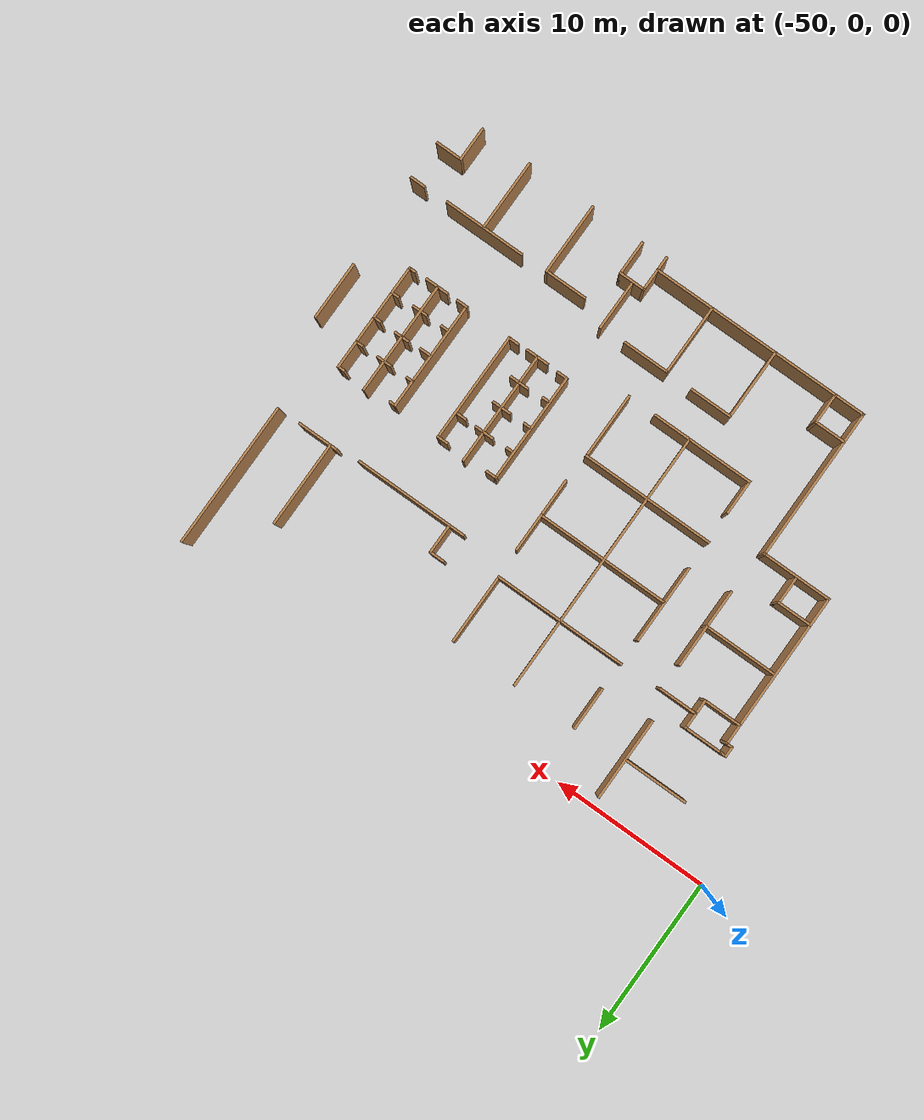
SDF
<sdf version="1.6">
 <model name="floor_plan">
  <pose>-1.19231 -1.13475 0 0 -0 0</pose>
  <link name="Wall_22">
   <collision name="Wall_22_Collision">
    <geometry><box><size>1 0.15 2.5</size></box></geometry>
    <pose>0 0 1.25 0 -0 0</pose>
   </collision>
   <visual name="Wall_22_Visual">
    <pose>0 0 1.25 0 -0 0</pose>
    <geometry><box><size>1 0.15 2.5</size></box></geometry>
    <material>
     <script><uri>file://media/materials/scripts/gazebo.material</uri><name>Gazebo/Wood</name></script>
     <ambient>1 1 1 1</ambient>
    </material>
   </visual>
   <pose>-26.55 -26.0536 0 0 -0 1.5708</pose>
  </link>
  <link name="Wall_23">
   <collision name="Wall_23_Collision">
    <geometry><box><size>14.25 0.15 2.5</size></box></geometry>
    <pose>0 0 1.25 0 -0 0</pose>
   </collision>
   <visual name="Wall_23_Visual">
    <pose>0 0 1.25 0 -0 0</pose>
    <geometry><box><size>14.25 0.15 2.5</size></box></geometry>
    <material>
     <script><uri>file://media/materials/scripts/gazebo.material</uri><name>Gazebo/Wood</name></script>
     <ambient>1 1 1 1</ambient>
    </material>
   </visual>
   <pose>-33.6 -25.6286 0 0 -0 3.14159</pose>
  </link>
  <link name="Wall_24">
   <collision name="Wall_24_Collision">
    <geometry><box><size>9.75 0.15 2.5</size></box></geometry>
    <pose>0 0 1.25 0 -0 0</pose>
   </collision>
   <visual name="Wall_24_Visual">
    <pose>0 0 1.25 0 -0 0</pose>
    <geometry><box><size>9.75 0.15 2.5</size></box></geometry>
    <material>
     <script><uri>file://media/materials/scripts/gazebo.material</uri><name>Gazebo/Wood</name></script>
     <ambient>1 1 1 1</ambient>
    </material>
   </visual>
   <pose>-40.65 -20.8286 0 0 -0 1.5708</pose>
  </link>
  <link name="Wall_25">
   <collision name="Wall_25_Collision">
    <geometry><box><size>4.5 0.15 2.5</size></box></geometry>
    <pose>0 0 1.25 0 -0 0</pose>
   </collision>
   <visual name="Wall_25_Visual">
    <pose>0 0 1.25 0 -0 0</pose>
    <geometry><box><size>4.5 0.15 2.5</size></box></geometry>
    <material>
     <script><uri>file://media/materials/scripts/gazebo.material</uri><name>Gazebo/Wood</name></script>
     <ambient>1 1 1 1</ambient>
    </material>
   </visual>
   <pose>-42.825 -16.0286 0 0 -0 3.14159</pose>
  </link>
  <link name="Wall_26">
   <collision name="Wall_26_Collision">
    <geometry><box><size>10 0.15 2.5</size></box></geometry>
    <pose>0 0 1.25 0 -0 0</pose>
   </collision>
   <visual name="Wall_26_Visual">
    <pose>0 0 1.25 0 -0 0</pose>
    <geometry><box><size>10 0.15 2.5</size></box></geometry>
    <material>
     <script><uri>file://media/materials/scripts/gazebo.material</uri><name>Gazebo/Wood</name></script>
     <ambient>1 1 1 1</ambient>
    </material>
   </visual>
   <pose>-45 -11.1036 0 0 -0 1.5708</pose>
  </link>
  <link name="Wall_27">
   <collision name="Wall_27_Collision">
    <geometry><box><size>0.5 0.15 2.5</size></box></geometry>
    <pose>0 0 1.25 0 -0 0</pose>
   </collision>
   <visual name="Wall_27_Visual">
    <pose>0 0 1.25 0 -0 0</pose>
    <geometry><box><size>0.5 0.15 2.5</size></box></geometry>
    <material>
     <script><uri>file://media/materials/scripts/gazebo.material</uri><name>Gazebo/Wood</name></script>
     <ambient>1 1 1 1</ambient>
    </material>
   </visual>
   <pose>-45.175 -6.1786 0 0 -0 3.14159</pose>
  </link>
  <link name="Wall_321">
   <collision name="Wall_321_Collision">
    <geometry><box><size>1.75 0.15 2.5</size></box></geometry>
    <pose>0 0 1.25 0 -0 0</pose>
   </collision>
   <visual name="Wall_321_Visual">
    <pose>0 0 1.25 0 -0 0</pose>
    <geometry><box><size>1.75 0.15 2.5</size></box></geometry>
    <material>
     <script><uri>file://media/materials/scripts/gazebo.material</uri><name>Gazebo/Wood</name></script>
     <ambient>1 1 1 1</ambient>
    </material>
   </visual>
   <pose>-13.0655 -24.3426 0 0 -0 3.14159</pose>
  </link>
  <link name="Wall_322">
   <collision name="Wall_322_Collision">
    <geometry><box><size>2.25 0.15 2.5</size></box></geometry>
    <pose>0 0 1.25 0 -0 0</pose>
   </collision>
   <visual name="Wall_322_Visual">
    <pose>0 0 1.25 0 -0 0</pose>
    <geometry><box><size>2.25 0.15 2.5</size></box></geometry>
    <material>
     <script><uri>file://media/materials/scripts/gazebo.material</uri><name>Gazebo/Wood</name></script>
     <ambient>1 1 1 1</ambient>
    </material>
   </visual>
   <pose>-13.8655 -25.3926 0 0 0 -1.5708</pose>
  </link>
  <link name="Wall_324">
   <collision name="Wall_324_Collision">
    <geometry><box><size>1 0.15 2.5</size></box></geometry>
    <pose>0 0 1.25 0 -0 0</pose>
   </collision>
   <visual name="Wall_324_Visual">
    <pose>0 0 1.25 0 -0 0</pose>
    <geometry><box><size>1 0.15 2.5</size></box></geometry>
    <material>
     <script><uri>file://media/materials/scripts/gazebo.material</uri><name>Gazebo/Wood</name></script>
     <ambient>1 1 1 1</ambient>
    </material>
   </visual>
   <pose>-12.6354 -21.8825 0 0 -0 3.14159</pose>
  </link>
  <link name="Wall_326">
   <collision name="Wall_326_Collision">
    <geometry><box><size>5.25 0.15 2.5</size></box></geometry>
    <pose>0 0 1.25 0 -0 0</pose>
   </collision>
   <visual name="Wall_326_Visual">
    <pose>0 0 1.25 0 -0 0</pose>
    <geometry><box><size>5.25 0.15 2.5</size></box></geometry>
    <material>
     <script><uri>file://media/materials/scripts/gazebo.material</uri><name>Gazebo/Wood</name></script>
     <ambient>1 1 1 1</ambient>
    </material>
   </visual>
   <pose>-17.2389 -21.9193 0 0 -0 3.14159</pose>
  </link>
  <link name="Wall_330">
   <collision name="Wall_330_Collision">
    <geometry><box><size>4.5 0.15 2.5</size></box></geometry>
    <pose>0 0 1.25 0 -0 0</pose>
   </collision>
   <visual name="Wall_330_Visual">
    <pose>0 0 1.25 0 -0 0</pose>
    <geometry><box><size>4.5 0.15 2.5</size></box></geometry>
    <material>
     <script><uri>file://media/materials/scripts/gazebo.material</uri><name>Gazebo/Wood</name></script>
     <ambient>1 1 1 1</ambient>
    </material>
   </visual>
   <pose>-17.1673 -24.191 0 0 0 -1.5708</pose>
  </link>
  <link name="Wall_334">
   <collision name="Wall_334_Collision">
    <geometry><box><size>4.6 0.15 2.5</size></box></geometry>
    <pose>0 0 1.25 0 -0 0</pose>
   </collision>
   <visual name="Wall_334_Visual">
    <pose>0 0 1.25 0 -0 0</pose>
    <geometry><box><size>4.6 0.15 2.5</size></box></geometry>
    <material>
     <script><uri>file://media/materials/scripts/gazebo.material</uri><name>Gazebo/Wood</name></script>
     <ambient>1 1 1 1</ambient>
    </material>
   </visual>
   <pose>-21.4986 -24.1906 0 0 -0 1.5708</pose>
  </link>
  <link name="Wall_336">
   <collision name="Wall_336_Collision">
    <geometry><box><size>2.75 0.15 2.5</size></box></geometry>
    <pose>0 0 1.25 0 -0 0</pose>
   </collision>
   <visual name="Wall_336_Visual">
    <pose>0 0 1.25 0 -0 0</pose>
    <geometry><box><size>2.75 0.15 2.5</size></box></geometry>
    <material>
     <script><uri>file://media/materials/scripts/gazebo.material</uri><name>Gazebo/Wood</name></script>
     <ambient>1 1 1 1</ambient>
    </material>
   </visual>
   <pose>-22.7986 -21.9656 0 0 -0 3.14159</pose>
  </link>
  <link name="Wall_338">
   <collision name="Wall_338_Collision">
    <geometry><box><size>1.5 0.15 2.5</size></box></geometry>
    <pose>0 0 1.25 0 -0 0</pose>
   </collision>
   <visual name="Wall_338_Visual">
    <pose>0 0 1.25 0 -0 0</pose>
    <geometry><box><size>1.5 0.15 2.5</size></box></geometry>
    <material>
     <script><uri>file://media/materials/scripts/gazebo.material</uri><name>Gazebo/Wood</name></script>
     <ambient>1 1 1 1</ambient>
    </material>
   </visual>
   <pose>-26.55 -24.9536 0 0 -0 1.5708</pose>
  </link>
  <link name="Wall_339">
   <collision name="Wall_339_Collision">
    <geometry><box><size>1.75 0.15 2.5</size></box></geometry>
    <pose>0 0 1.25 0 -0 0</pose>
   </collision>
   <visual name="Wall_339_Visual">
    <pose>0 0 1.25 0 -0 0</pose>
    <geometry><box><size>1.75 0.15 2.5</size></box></geometry>
    <material>
     <script><uri>file://media/materials/scripts/gazebo.material</uri><name>Gazebo/Wood</name></script>
     <ambient>1 1 1 1</ambient>
    </material>
   </visual>
   <pose>-25.75 -24.2786 0 0 -0 0</pose>
  </link>
  <link name="Wall_340">
   <collision name="Wall_340_Collision">
    <geometry><box><size>2.25 0.15 2.5</size></box></geometry>
    <pose>0 0 1.25 0 -0 0</pose>
   </collision>
   <visual name="Wall_340_Visual">
    <pose>0 0 1.25 0 -0 0</pose>
    <geometry><box><size>2.25 0.15 2.5</size></box></geometry>
    <material>
     <script><uri>file://media/materials/scripts/gazebo.material</uri><name>Gazebo/Wood</name></script>
     <ambient>1 1 1 1</ambient>
    </material>
   </visual>
   <pose>-24.95 -25.3286 0 0 0 -1.5708</pose>
  </link>
  <link name="Wall_342">
   <collision name="Wall_342_Collision">
    <geometry><box><size>3.25 0.15 2.5</size></box></geometry>
    <pose>0 0 1.25 0 -0 0</pose>
   </collision>
   <visual name="Wall_342_Visual">
    <pose>0 0 1.25 0 -0 0</pose>
    <geometry><box><size>3.25 0.15 2.5</size></box></geometry>
    <material>
     <script><uri>file://media/materials/scripts/gazebo.material</uri><name>Gazebo/Wood</name></script>
     <ambient>1 1 1 1</ambient>
    </material>
   </visual>
   <pose>-25.8158 -22.6722 0 0 -0 1.5708</pose>
  </link>
  <link name="Wall_345">
   <collision name="Wall_345_Collision">
    <geometry><box><size>4.5 0.15 2.5</size></box></geometry>
    <pose>0 0 1.25 0 -0 0</pose>
   </collision>
   <visual name="Wall_345_Visual">
    <pose>0 0 1.25 0 -0 0</pose>
    <geometry><box><size>4.5 0.15 2.5</size></box></geometry>
    <material>
     <script><uri>file://media/materials/scripts/gazebo.material</uri><name>Gazebo/Wood</name></script>
     <ambient>1 1 1 1</ambient>
    </material>
   </visual>
   <pose>-30.2996 -23.3938 0 0 -0 1.5708</pose>
  </link>
  <link name="Wall_346">
   <collision name="Wall_346_Collision">
    <geometry><box><size>3 0.15 2.5</size></box></geometry>
    <pose>0 0 1.25 0 -0 0</pose>
   </collision>
   <visual name="Wall_346_Visual">
    <pose>0 0 1.25 0 -0 0</pose>
    <geometry><box><size>3 0.15 2.5</size></box></geometry>
    <material>
     <script><uri>file://media/materials/scripts/gazebo.material</uri><name>Gazebo/Wood</name></script>
     <ambient>1 1 1 1</ambient>
    </material>
   </visual>
   <pose>-28.8746 -21.2188 0 0 -0 0</pose>
  </link>
  <link name="Wall_348">
   <collision name="Wall_348_Collision">
    <geometry><box><size>4.5 0.15 2.5</size></box></geometry>
    <pose>0 0 1.25 0 -0 0</pose>
   </collision>
   <visual name="Wall_348_Visual">
    <pose>0 0 1.25 0 -0 0</pose>
    <geometry><box><size>4.5 0.15 2.5</size></box></geometry>
    <material>
     <script><uri>file://media/materials/scripts/gazebo.material</uri><name>Gazebo/Wood</name></script>
     <ambient>1 1 1 1</ambient>
    </material>
   </visual>
   <pose>-34.6308 -23.3938 0 0 -0 1.5708</pose>
  </link>
  <link name="Wall_349">
   <collision name="Wall_349_Collision">
    <geometry><box><size>2.75 0.15 2.5</size></box></geometry>
    <pose>0 0 1.25 0 -0 0</pose>
   </collision>
   <visual name="Wall_349_Visual">
    <pose>0 0 1.25 0 -0 0</pose>
    <geometry><box><size>2.75 0.15 2.5</size></box></geometry>
    <material>
     <script><uri>file://media/materials/scripts/gazebo.material</uri><name>Gazebo/Wood</name></script>
     <ambient>1 1 1 1</ambient>
    </material>
   </visual>
   <pose>-33.3308 -21.2188 0 0 -0 0</pose>
  </link>
  <link name="Wall_351">
   <collision name="Wall_351_Collision">
    <geometry><box><size>2 0.15 2.5</size></box></geometry>
    <pose>0 0 1.25 0 -0 0</pose>
   </collision>
   <visual name="Wall_351_Visual">
    <pose>0 0 1.25 0 -0 0</pose>
    <geometry><box><size>2 0.15 2.5</size></box></geometry>
    <material>
     <script><uri>file://media/materials/scripts/gazebo.material</uri><name>Gazebo/Wood</name></script>
     <ambient>1 1 1 1</ambient>
    </material>
   </visual>
   <pose>-38.7398 -24.6715 0 0 -0 1.5708</pose>
  </link>
  <link name="Wall_352">
   <collision name="Wall_352_Collision">
    <geometry><box><size>2 0.15 2.5</size></box></geometry>
    <pose>0 0 1.25 0 -0 0</pose>
   </collision>
   <visual name="Wall_352_Visual">
    <pose>0 0 1.25 0 -0 0</pose>
    <geometry><box><size>2 0.15 2.5</size></box></geometry>
    <material>
     <script><uri>file://media/materials/scripts/gazebo.material</uri><name>Gazebo/Wood</name></script>
     <ambient>1 1 1 1</ambient>
    </material>
   </visual>
   <pose>-39.6648 -23.7465 0 0 -0 3.14159</pose>
  </link>
  <link name="Wall_512">
   <collision name="Wall_512_Collision">
    <geometry><box><size>3.75 0.15 2.5</size></box></geometry>
    <pose>0 0 1.25 0 -0 0</pose>
   </collision>
   <visual name="Wall_512_Visual">
    <pose>0 0 1.25 0 -0 0</pose>
    <geometry><box><size>3.75 0.15 2.5</size></box></geometry>
    <material>
     <script><uri>file://media/materials/scripts/gazebo.material</uri><name>Gazebo/Wood</name></script>
     <ambient>1 1 1 1</ambient>
    </material>
   </visual>
   <pose>-12.449 -14.135 0 0 0 -1.5708</pose>
  </link>
  <link name="Wall_564">
   <collision name="Wall_564_Collision">
    <geometry><box><size>9.25 0.15 2.5</size></box></geometry>
    <pose>0 0 1.25 0 -0 0</pose>
   </collision>
   <visual name="Wall_564_Visual">
    <pose>0 0 1.25 0 -0 0</pose>
    <geometry><box><size>9.25 0.15 2.5</size></box></geometry>
    <material>
     <script><uri>file://media/materials/scripts/gazebo.material</uri><name>Gazebo/Wood</name></script>
     <ambient>1 1 1 1</ambient>
    </material>
   </visual>
   <pose>-13.76 -2.31803 0 0 0 -1.5708</pose>
  </link>
  <link name="Wall_593">
   <collision name="Wall_593_Collision">
    <geometry><box><size>7.25 0.15 2.5</size></box></geometry>
    <pose>0 0 1.25 0 -0 0</pose>
   </collision>
   <visual name="Wall_593_Visual">
    <pose>0 0 1.25 0 -0 0</pose>
    <geometry><box><size>7.25 0.15 2.5</size></box></geometry>
    <material>
     <script><uri>file://media/materials/scripts/gazebo.material</uri><name>Gazebo/Wood</name></script>
     <ambient>1 1 1 1</ambient>
    </material>
   </visual>
   <pose>-22.7839 -7.13156 0 0 -0 0</pose>
  </link>
  <link name="Wall_600">
   <collision name="Wall_600_Collision">
    <geometry><box><size>5.5 0.15 2.5</size></box></geometry>
    <pose>0 0 1.25 0 -0 0</pose>
   </collision>
   <visual name="Wall_600_Visual">
    <pose>0 0 1.25 0 -0 0</pose>
    <geometry><box><size>5.5 0.15 2.5</size></box></geometry>
    <material>
     <script><uri>file://media/materials/scripts/gazebo.material</uri><name>Gazebo/Wood</name></script>
     <ambient>1 1 1 1</ambient>
    </material>
   </visual>
   <pose>-17.3601 -4.24303 0 0 0 -1.5708</pose>
  </link>
  <link name="Wall_601">
   <collision name="Wall_601_Collision">
    <geometry><box><size>2.25 0.15 2.5</size></box></geometry>
    <pose>0 0 1.25 0 -0 0</pose>
   </collision>
   <visual name="Wall_601_Visual">
    <pose>0 0 1.25 0 -0 0</pose>
    <geometry><box><size>2.25 0.15 2.5</size></box></geometry>
    <material>
     <script><uri>file://media/materials/scripts/gazebo.material</uri><name>Gazebo/Wood</name></script>
     <ambient>1 1 1 1</ambient>
    </material>
   </visual>
   <pose>-16.31 -6.91803 0 0 -0 0</pose>
  </link>
  <link name="Wall_603">
   <collision name="Wall_603_Collision">
    <geometry><box><size>0.5 0.15 2.5</size></box></geometry>
    <pose>0 0 1.25 0 -0 0</pose>
   </collision>
   <visual name="Wall_603_Visual">
    <pose>0 0 1.25 0 -0 0</pose>
    <geometry><box><size>0.5 0.15 2.5</size></box></geometry>
    <material>
     <script><uri>file://media/materials/scripts/gazebo.material</uri><name>Gazebo/Wood</name></script>
     <ambient>1 1 1 1</ambient>
    </material>
   </visual>
   <pose>-17.535 -6.91803 0 0 -0 3.14159</pose>
  </link>
  <link name="Wall_605">
   <collision name="Wall_605_Collision">
    <geometry><box><size>1 0.15 2.5</size></box></geometry>
    <pose>0 0 1.25 0 -0 0</pose>
   </collision>
   <visual name="Wall_605_Visual">
    <pose>0 0 1.25 0 -0 0</pose>
    <geometry><box><size>1 0.15 2.5</size></box></geometry>
    <material>
     <script><uri>file://media/materials/scripts/gazebo.material</uri><name>Gazebo/Wood</name></script>
     <ambient>1 1 1 1</ambient>
    </material>
   </visual>
   <pose>-25.8341 -5.29829 0 0 -0 0</pose>
  </link>
  <link name="Wall_606">
   <collision name="Wall_606_Collision">
    <geometry><box><size>1.9 0.15 2.5</size></box></geometry>
    <pose>0 0 1.25 0 -0 0</pose>
   </collision>
   <visual name="Wall_606_Visual">
    <pose>0 0 1.25 0 -0 0</pose>
    <geometry><box><size>1.9 0.15 2.5</size></box></geometry>
    <material>
     <script><uri>file://media/materials/scripts/gazebo.material</uri><name>Gazebo/Wood</name></script>
     <ambient>1 1 1 1</ambient>
    </material>
   </visual>
   <pose>-25.4091 -6.17329 0 0 0 -1.5708</pose>
  </link>
  <link name="Wall_691">
   <collision name="Wall_691_Collision">
    <geometry><box><size>0.75 0.15 2.5</size></box></geometry>
    <pose>0 0 1.25 0 -0 0</pose>
   </collision>
   <visual name="Wall_691_Visual">
    <pose>0 0 1.25 0 -0 0</pose>
    <geometry><box><size>0.75 0.15 2.5</size></box></geometry>
    <material>
     <script><uri>file://media/materials/scripts/gazebo.material</uri><name>Gazebo/Wood</name></script>
     <ambient>1 1 1 1</ambient>
    </material>
   </visual>
   <pose>-45.35 -5.8786 0 0 -0 1.5708</pose>
  </link>
  <link name="Wall_692">
   <collision name="Wall_692_Collision">
    <geometry><box><size>0.5 0.15 2.5</size></box></geometry>
    <pose>0 0 1.25 0 -0 0</pose>
   </collision>
   <visual name="Wall_692_Visual">
    <pose>0 0 1.25 0 -0 0</pose>
    <geometry><box><size>0.5 0.15 2.5</size></box></geometry>
    <material>
     <script><uri>file://media/materials/scripts/gazebo.material</uri><name>Gazebo/Wood</name></script>
     <ambient>1 1 1 1</ambient>
    </material>
   </visual>
   <pose>-45.175 -5.5786 0 0 -0 0</pose>
  </link>
  <link name="Wall_695">
   <collision name="Wall_695_Collision">
    <geometry><box><size>2.5 0.15 2.5</size></box></geometry>
    <pose>0 0 1.25 0 -0 0</pose>
   </collision>
   <visual name="Wall_695_Visual">
    <pose>0 0 1.25 0 -0 0</pose>
    <geometry><box><size>2.5 0.15 2.5</size></box></geometry>
    <material>
     <script><uri>file://media/materials/scripts/gazebo.material</uri><name>Gazebo/Wood</name></script>
     <ambient>1 1 1 1</ambient>
    </material>
   </visual>
   <pose>-43.825 -5.5786 0 0 -0 0</pose>
  </link>
  <link name="Wall_696">
   <collision name="Wall_696_Collision">
    <geometry><box><size>2 0.15 2.5</size></box></geometry>
    <pose>0 0 1.25 0 -0 0</pose>
   </collision>
   <visual name="Wall_696_Visual">
    <pose>0 0 1.25 0 -0 0</pose>
    <geometry><box><size>2 0.15 2.5</size></box></geometry>
    <material>
     <script><uri>file://media/materials/scripts/gazebo.material</uri><name>Gazebo/Wood</name></script>
     <ambient>1 1 1 1</ambient>
    </material>
   </visual>
   <pose>-42.65 -6.5036 0 0 0 -1.5708</pose>
  </link>
  <link name="Wall_697">
   <collision name="Wall_697_Collision">
    <geometry><box><size>2.45 0.15 2.5</size></box></geometry>
    <pose>0 0 1.25 0 -0 0</pose>
   </collision>
   <visual name="Wall_697_Visual">
    <pose>0 0 1.25 0 -0 0</pose>
    <geometry><box><size>2.45 0.15 2.5</size></box></geometry>
    <material>
     <script><uri>file://media/materials/scripts/gazebo.material</uri><name>Gazebo/Wood</name></script>
     <ambient>1 1 1 1</ambient>
    </material>
   </visual>
   <pose>-43.8 -7.4286 0 0 -0 3.14159</pose>
  </link>
  <link name="Wall_699">
   <collision name="Wall_699_Collision">
    <geometry><box><size>2.5 0.15 2.5</size></box></geometry>
    <pose>0 0 1.25 0 -0 0</pose>
   </collision>
   <visual name="Wall_699_Visual">
    <pose>0 0 1.25 0 -0 0</pose>
    <geometry><box><size>2.5 0.15 2.5</size></box></geometry>
    <material>
     <script><uri>file://media/materials/scripts/gazebo.material</uri><name>Gazebo/Wood</name></script>
     <ambient>1 1 1 1</ambient>
    </material>
   </visual>
   <pose>-41.4538 -6.5259 0 0 -0 0</pose>
  </link>
  <link name="Wall_701">
   <collision name="Wall_701_Collision">
    <geometry><box><size>5.25 0.15 2.5</size></box></geometry>
    <pose>0 0 1.25 0 -0 0</pose>
   </collision>
   <visual name="Wall_701_Visual">
    <pose>0 0 1.25 0 -0 0</pose>
    <geometry><box><size>5.25 0.15 2.5</size></box></geometry>
    <material>
     <script><uri>file://media/materials/scripts/gazebo.material</uri><name>Gazebo/Wood</name></script>
     <ambient>1 1 1 1</ambient>
    </material>
   </visual>
   <pose>-40.9302 -2.22551 0 0 -0 1.5708</pose>
  </link>
  <link name="Wall_703">
   <collision name="Wall_703_Collision">
    <geometry><box><size>4.15 0.15 2.5</size></box></geometry>
    <pose>0 0 1.25 0 -0 0</pose>
   </collision>
   <visual name="Wall_703_Visual">
    <pose>0 0 1.25 0 -0 0</pose>
    <geometry><box><size>4.15 0.15 2.5</size></box></geometry>
    <material>
     <script><uri>file://media/materials/scripts/gazebo.material</uri><name>Gazebo/Wood</name></script>
     <ambient>1 1 1 1</ambient>
    </material>
   </visual>
   <pose>-42.9592 -2.19655 0 0 -0 0</pose>
  </link>
  <link name="Wall_708">
   <collision name="Wall_708_Collision">
    <geometry><box><size>4.75 0.15 2.5</size></box></geometry>
    <pose>0 0 1.25 0 -0 0</pose>
   </collision>
   <visual name="Wall_708_Visual">
    <pose>0 0 1.25 0 -0 0</pose>
    <geometry><box><size>4.75 0.15 2.5</size></box></geometry>
    <material>
     <script><uri>file://media/materials/scripts/gazebo.material</uri><name>Gazebo/Wood</name></script>
     <ambient>1 1 1 1</ambient>
    </material>
   </visual>
   <pose>-42.6551 -10.8505 0 0 -0 0</pose>
  </link>
  <link name="Wall_709">
   <collision name="Wall_709_Collision">
    <geometry><box><size>2.75 0.15 2.5</size></box></geometry>
    <pose>0 0 1.25 0 -0 0</pose>
   </collision>
   <visual name="Wall_709_Visual">
    <pose>0 0 1.25 0 -0 0</pose>
    <geometry><box><size>2.75 0.15 2.5</size></box></geometry>
    <material>
     <script><uri>file://media/materials/scripts/gazebo.material</uri><name>Gazebo/Wood</name></script>
     <ambient>1 1 1 1</ambient>
    </material>
   </visual>
   <pose>-40.3551 -9.55052 0 0 -0 1.5708</pose>
  </link>
  <link name="Wall_711">
   <collision name="Wall_711_Collision">
    <geometry><box><size>2.5 0.15 2.5</size></box></geometry>
    <pose>0 0 1.25 0 -0 0</pose>
   </collision>
   <visual name="Wall_711_Visual">
    <pose>0 0 1.25 0 -0 0</pose>
    <geometry><box><size>2.5 0.15 2.5</size></box></geometry>
    <material>
     <script><uri>file://media/materials/scripts/gazebo.material</uri><name>Gazebo/Wood</name></script>
     <ambient>1 1 1 1</ambient>
    </material>
   </visual>
   <pose>-40.3551 -12.0255 0 0 0 -1.5708</pose>
  </link>
  <link name="Wall_713">
   <collision name="Wall_713_Collision">
    <geometry><box><size>2.25 0.15 2.5</size></box></geometry>
    <pose>0 0 1.25 0 -0 0</pose>
   </collision>
   <visual name="Wall_713_Visual">
    <pose>0 0 1.25 0 -0 0</pose>
    <geometry><box><size>2.25 0.15 2.5</size></box></geometry>
    <material>
     <script><uri>file://media/materials/scripts/gazebo.material</uri><name>Gazebo/Wood</name></script>
     <ambient>1 1 1 1</ambient>
    </material>
   </visual>
   <pose>-43.9051 -14.253 0 0 -0 0</pose>
  </link>
  <link name="Wall_714">
   <collision name="Wall_714_Collision">
    <geometry><box><size>1.85 0.15 2.5</size></box></geometry>
    <pose>0 0 1.25 0 -0 0</pose>
   </collision>
   <visual name="Wall_714_Visual">
    <pose>0 0 1.25 0 -0 0</pose>
    <geometry><box><size>1.85 0.15 2.5</size></box></geometry>
    <material>
     <script><uri>file://media/materials/scripts/gazebo.material</uri><name>Gazebo/Wood</name></script>
     <ambient>1 1 1 1</ambient>
    </material>
   </visual>
   <pose>-42.8551 -15.103 0 0 0 -1.5708</pose>
  </link>
  <link name="Wall_718">
   <collision name="Wall_718_Collision">
    <geometry><box><size>2.75 0.15 2.5</size></box></geometry>
    <pose>0 0 1.25 0 -0 0</pose>
   </collision>
   <visual name="Wall_718_Visual">
    <pose>0 0 1.25 0 -0 0</pose>
    <geometry><box><size>2.75 0.15 2.5</size></box></geometry>
    <material>
     <script><uri>file://media/materials/scripts/gazebo.material</uri><name>Gazebo/Wood</name></script>
     <ambient>1 1 1 1</ambient>
    </material>
   </visual>
   <pose>-37.6352 -3.29944 0 0 -0 1.5708</pose>
  </link>
  <link name="Wall_720">
   <collision name="Wall_720_Collision">
    <geometry><box><size>17 0.15 2.5</size></box></geometry>
    <pose>0 0 1.25 0 -0 0</pose>
   </collision>
   <visual name="Wall_720_Visual">
    <pose>0 0 1.25 0 -0 0</pose>
    <geometry><box><size>17 0.15 2.5</size></box></geometry>
    <material>
     <script><uri>file://media/materials/scripts/gazebo.material</uri><name>Gazebo/Wood</name></script>
     <ambient>1 1 1 1</ambient>
    </material>
   </visual>
   <pose>-33.5352 -10.4244 0 0 0 -1.5708</pose>
  </link>
  <link name="Wall_721">
   <collision name="Wall_721_Collision">
    <geometry><box><size>4.25 0.15 2.5</size></box></geometry>
    <pose>0 0 1.25 0 -0 0</pose>
   </collision>
   <visual name="Wall_721_Visual">
    <pose>0 0 1.25 0 -0 0</pose>
    <geometry><box><size>4.25 0.15 2.5</size></box></geometry>
    <material>
     <script><uri>file://media/materials/scripts/gazebo.material</uri><name>Gazebo/Wood</name></script>
     <ambient>1 1 1 1</ambient>
    </material>
   </visual>
   <pose>-35.5852 -18.8494 0 0 -0 3.14159</pose>
  </link>
  <link name="Wall_722">
   <collision name="Wall_722_Collision">
    <geometry><box><size>2.25 0.15 2.5</size></box></geometry>
    <pose>0 0 1.25 0 -0 0</pose>
   </collision>
   <visual name="Wall_722_Visual">
    <pose>0 0 1.25 0 -0 0</pose>
    <geometry><box><size>2.25 0.15 2.5</size></box></geometry>
    <material>
     <script><uri>file://media/materials/scripts/gazebo.material</uri><name>Gazebo/Wood</name></script>
     <ambient>1 1 1 1</ambient>
    </material>
   </visual>
   <pose>-37.6352 -17.7994 0 0 -0 1.5708</pose>
  </link>
  <link name="Wall_724">
   <collision name="Wall_724_Collision">
    <geometry><box><size>2.5 0.15 2.5</size></box></geometry>
    <pose>0 0 1.25 0 -0 0</pose>
   </collision>
   <visual name="Wall_724_Visual">
    <pose>0 0 1.25 0 -0 0</pose>
    <geometry><box><size>2.5 0.15 2.5</size></box></geometry>
    <material>
     <script><uri>file://media/materials/scripts/gazebo.material</uri><name>Gazebo/Wood</name></script>
     <ambient>1 1 1 1</ambient>
    </material>
   </visual>
   <pose>-32.3602 -18.8494 0 0 -0 0</pose>
  </link>
  <link name="Wall_726">
   <collision name="Wall_726_Collision">
    <geometry><box><size>8.5 0.15 2.5</size></box></geometry>
    <pose>0 0 1.25 0 -0 0</pose>
   </collision>
   <visual name="Wall_726_Visual">
    <pose>0 0 1.25 0 -0 0</pose>
    <geometry><box><size>8.5 0.15 2.5</size></box></geometry>
    <material>
     <script><uri>file://media/materials/scripts/gazebo.material</uri><name>Gazebo/Wood</name></script>
     <ambient>1 1 1 1</ambient>
    </material>
   </visual>
   <pose>-33.543 -14.7496 0 0 -0 0</pose>
  </link>
  <link name="Wall_728">
   <collision name="Wall_728_Collision">
    <geometry><box><size>5 0.15 2.5</size></box></geometry>
    <pose>0 0 1.25 0 -0 0</pose>
   </collision>
   <visual name="Wall_728_Visual">
    <pose>0 0 1.25 0 -0 0</pose>
    <geometry><box><size>5 0.15 2.5</size></box></geometry>
    <material>
     <script><uri>file://media/materials/scripts/gazebo.material</uri><name>Gazebo/Wood</name></script>
     <ambient>1 1 1 1</ambient>
    </material>
   </visual>
   <pose>-37.6766 -10.4631 0 0 0 -1.5708</pose>
  </link>
  <link name="Wall_731">
   <collision name="Wall_731_Collision">
    <geometry><box><size>8.5 0.15 2.5</size></box></geometry>
    <pose>0 0 1.25 0 -0 0</pose>
   </collision>
   <visual name="Wall_731_Visual">
    <pose>0 0 1.25 0 -0 0</pose>
    <geometry><box><size>8.5 0.15 2.5</size></box></geometry>
    <material>
     <script><uri>file://media/materials/scripts/gazebo.material</uri><name>Gazebo/Wood</name></script>
     <ambient>1 1 1 1</ambient>
    </material>
   </visual>
   <pose>-33.4188 -10.5652 0 0 -0 0</pose>
  </link>
  <link name="Wall_733">
   <collision name="Wall_733_Collision">
    <geometry><box><size>2.5 0.15 2.5</size></box></geometry>
    <pose>0 0 1.25 0 -0 0</pose>
   </collision>
   <visual name="Wall_733_Visual">
    <pose>0 0 1.25 0 -0 0</pose>
    <geometry><box><size>2.5 0.15 2.5</size></box></geometry>
    <material>
     <script><uri>file://media/materials/scripts/gazebo.material</uri><name>Gazebo/Wood</name></script>
     <ambient>1 1 1 1</ambient>
    </material>
   </visual>
   <pose>-29.2438 -9.39024 0 0 -0 1.5708</pose>
  </link>
  <link name="Wall_735">
   <collision name="Wall_735_Collision">
    <geometry><box><size>2.5 0.15 2.5</size></box></geometry>
    <pose>0 0 1.25 0 -0 0</pose>
   </collision>
   <visual name="Wall_735_Visual">
    <pose>0 0 1.25 0 -0 0</pose>
    <geometry><box><size>2.5 0.15 2.5</size></box></geometry>
    <material>
     <script><uri>file://media/materials/scripts/gazebo.material</uri><name>Gazebo/Wood</name></script>
     <ambient>1 1 1 1</ambient>
    </material>
   </visual>
   <pose>-29.2438 -11.7402 0 0 0 -1.5708</pose>
  </link>
  <link name="Wall_737">
   <collision name="Wall_737_Collision">
    <geometry><box><size>8.5 0.15 2.5</size></box></geometry>
    <pose>0 0 1.25 0 -0 0</pose>
   </collision>
   <visual name="Wall_737_Visual">
    <pose>0 0 1.25 0 -0 0</pose>
    <geometry><box><size>8.5 0.15 2.5</size></box></geometry>
    <material>
     <script><uri>file://media/materials/scripts/gazebo.material</uri><name>Gazebo/Wood</name></script>
     <ambient>1 1 1 1</ambient>
    </material>
   </visual>
   <pose>-33.5016 -6.38089 0 0 -0 0</pose>
  </link>
  <link name="Wall_739">
   <collision name="Wall_739_Collision">
    <geometry><box><size>4.5 0.15 2.5</size></box></geometry>
    <pose>0 0 1.25 0 -0 0</pose>
   </collision>
   <visual name="Wall_739_Visual">
    <pose>0 0 1.25 0 -0 0</pose>
    <geometry><box><size>4.5 0.15 2.5</size></box></geometry>
    <material>
     <script><uri>file://media/materials/scripts/gazebo.material</uri><name>Gazebo/Wood</name></script>
     <ambient>1 1 1 1</ambient>
    </material>
   </visual>
   <pose>-29.3266 -4.20589 0 0 -0 1.5708</pose>
  </link>
  <link name="Wall_742">
   <collision name="Wall_742_Collision">
    <geometry><box><size>4.25 0.15 2.5</size></box></geometry>
    <pose>0 0 1.25 0 -0 0</pose>
   </collision>
   <visual name="Wall_742_Visual">
    <pose>0 0 1.25 0 -0 0</pose>
    <geometry><box><size>4.25 0.15 2.5</size></box></geometry>
    <material>
     <script><uri>file://media/materials/scripts/gazebo.material</uri><name>Gazebo/Wood</name></script>
     <ambient>1 1 1 1</ambient>
    </material>
   </visual>
   <pose>-29.368 -16.7996 0 0 0 -1.5708</pose>
  </link>
  <link name="Wall_748">
   <collision name="Wall_748_Collision">
    <geometry><box><size>7.25 0.15 2.5</size></box></geometry>
    <pose>0 0 1.25 0 -0 0</pose>
   </collision>
   <visual name="Wall_748_Visual">
    <pose>0 0 1.25 0 -0 0</pose>
    <geometry><box><size>7.25 0.15 2.5</size></box></geometry>
    <material>
     <script><uri>file://media/materials/scripts/gazebo.material</uri><name>Gazebo/Wood</name></script>
     <ambient>1 1 1 1</ambient>
    </material>
   </visual>
   <pose>-23.9172 -14.1152 0 0 0 -1.5708</pose>
  </link>
  <link name="Wall_750">
   <collision name="Wall_750_Collision">
    <geometry><box><size>7.25 0.15 2.5</size></box></geometry>
    <pose>0 0 1.25 0 -0 0</pose>
   </collision>
   <visual name="Wall_750_Visual">
    <pose>0 0 1.25 0 -0 0</pose>
    <geometry><box><size>7.25 0.15 2.5</size></box></geometry>
    <material>
     <script><uri>file://media/materials/scripts/gazebo.material</uri><name>Gazebo/Wood</name></script>
     <ambient>1 1 1 1</ambient>
    </material>
   </visual>
   <pose>-17.0527 -14.1152 0 0 0 -1.5708</pose>
  </link>
  <link name="Wall_757">
   <collision name="Wall_757_Collision">
    <geometry><box><size>0.75 0.15 2.5</size></box></geometry>
    <pose>0 0 1.25 0 -0 0</pose>
   </collision>
   <visual name="Wall_757_Visual">
    <pose>0 0 1.25 0 -0 0</pose>
    <geometry><box><size>0.75 0.15 2.5</size></box></geometry>
    <material>
     <script><uri>file://media/materials/scripts/gazebo.material</uri><name>Gazebo/Wood</name></script>
     <ambient>1 1 1 1</ambient>
    </material>
   </visual>
   <pose>-18.7067 -17.6956 0 0 -0 3.14159</pose>
  </link>
  <link name="Wall_758">
   <collision name="Wall_758_Collision">
    <geometry><box><size>7 0.15 2.5</size></box></geometry>
    <pose>0 0 1.25 0 -0 0</pose>
   </collision>
   <visual name="Wall_758_Visual">
    <pose>0 0 1.25 0 -0 0</pose>
    <geometry><box><size>7 0.15 2.5</size></box></geometry>
    <material>
     <script><uri>file://media/materials/scripts/gazebo.material</uri><name>Gazebo/Wood</name></script>
     <ambient>1 1 1 1</ambient>
    </material>
   </visual>
   <pose>-19.0067 -14.2706 0 0 -0 1.5708</pose>
  </link>
  <link name="Wall_759">
   <collision name="Wall_759_Collision">
    <geometry><box><size>0.5 0.15 2.5</size></box></geometry>
    <pose>0 0 1.25 0 -0 0</pose>
   </collision>
   <visual name="Wall_759_Visual">
    <pose>0 0 1.25 0 -0 0</pose>
    <geometry><box><size>0.5 0.15 2.5</size></box></geometry>
    <material>
     <script><uri>file://media/materials/scripts/gazebo.material</uri><name>Gazebo/Wood</name></script>
     <ambient>1 1 1 1</ambient>
    </material>
   </visual>
   <pose>-18.8317 -10.8456 0 0 -0 0</pose>
  </link>
  <link name="Wall_763">
   <collision name="Wall_763_Collision">
    <geometry><box><size>0.5 0.15 2.5</size></box></geometry>
    <pose>0 0 1.25 0 -0 0</pose>
   </collision>
   <visual name="Wall_763_Visual">
    <pose>0 0 1.25 0 -0 0</pose>
    <geometry><box><size>0.5 0.15 2.5</size></box></geometry>
    <material>
     <script><uri>file://media/materials/scripts/gazebo.material</uri><name>Gazebo/Wood</name></script>
     <ambient>1 1 1 1</ambient>
    </material>
   </visual>
   <pose>-15.3136 -10.7787 0 0 -0 0</pose>
  </link>
  <link name="Wall_764">
   <collision name="Wall_764_Collision">
    <geometry><box><size>7 0.15 2.5</size></box></geometry>
    <pose>0 0 1.25 0 -0 0</pose>
   </collision>
   <visual name="Wall_764_Visual">
    <pose>0 0 1.25 0 -0 0</pose>
    <geometry><box><size>7 0.15 2.5</size></box></geometry>
    <material>
     <script><uri>file://media/materials/scripts/gazebo.material</uri><name>Gazebo/Wood</name></script>
     <ambient>1 1 1 1</ambient>
    </material>
   </visual>
   <pose>-15.1386 -14.2037 0 0 0 -1.5708</pose>
  </link>
  <link name="Wall_765">
   <collision name="Wall_765_Collision">
    <geometry><box><size>0.5 0.15 2.5</size></box></geometry>
    <pose>0 0 1.25 0 -0 0</pose>
   </collision>
   <visual name="Wall_765_Visual">
    <pose>0 0 1.25 0 -0 0</pose>
    <geometry><box><size>0.5 0.15 2.5</size></box></geometry>
    <material>
     <script><uri>file://media/materials/scripts/gazebo.material</uri><name>Gazebo/Wood</name></script>
     <ambient>1 1 1 1</ambient>
    </material>
   </visual>
   <pose>-15.3136 -17.6287 0 0 -0 3.14159</pose>
  </link>
  <link name="Wall_767">
   <collision name="Wall_767_Collision">
    <geometry><box><size>1 0.15 2.5</size></box></geometry>
    <pose>0 0 1.25 0 -0 0</pose>
   </collision>
   <visual name="Wall_767_Visual">
    <pose>0 0 1.25 0 -0 0</pose>
    <geometry><box><size>1 0.15 2.5</size></box></geometry>
    <material>
     <script><uri>file://media/materials/scripts/gazebo.material</uri><name>Gazebo/Wood</name></script>
     <ambient>1 1 1 1</ambient>
    </material>
   </visual>
   <pose>-17.045 -12.508 0 0 -0 0</pose>
  </link>
  <link name="Wall_769">
   <collision name="Wall_769_Collision">
    <geometry><box><size>1 0.15 2.5</size></box></geometry>
    <pose>0 0 1.25 0 -0 0</pose>
   </collision>
   <visual name="Wall_769_Visual">
    <pose>0 0 1.25 0 -0 0</pose>
    <geometry><box><size>1 0.15 2.5</size></box></geometry>
    <material>
     <script><uri>file://media/materials/scripts/gazebo.material</uri><name>Gazebo/Wood</name></script>
     <ambient>1 1 1 1</ambient>
    </material>
   </visual>
   <pose>-17.045 -14.2012 0 0 -0 0</pose>
  </link>
  <link name="Wall_771">
   <collision name="Wall_771_Collision">
    <geometry><box><size>1 0.15 2.5</size></box></geometry>
    <pose>0 0 1.25 0 -0 0</pose>
   </collision>
   <visual name="Wall_771_Visual">
    <pose>0 0 1.25 0 -0 0</pose>
    <geometry><box><size>1 0.15 2.5</size></box></geometry>
    <material>
     <script><uri>file://media/materials/scripts/gazebo.material</uri><name>Gazebo/Wood</name></script>
     <ambient>1 1 1 1</ambient>
    </material>
   </visual>
   <pose>-17.009 -16.0024 0 0 -0 0</pose>
  </link>
  <link name="Wall_773">
   <collision name="Wall_773_Collision">
    <geometry><box><size>0.5 0.15 2.5</size></box></geometry>
    <pose>0 0 1.25 0 -0 0</pose>
   </collision>
   <visual name="Wall_773_Visual">
    <pose>0 0 1.25 0 -0 0</pose>
    <geometry><box><size>0.5 0.15 2.5</size></box></geometry>
    <material>
     <script><uri>file://media/materials/scripts/gazebo.material</uri><name>Gazebo/Wood</name></script>
     <ambient>1 1 1 1</ambient>
    </material>
   </visual>
   <pose>-18.8081 -12.508 0 0 -0 0</pose>
  </link>
  <link name="Wall_775">
   <collision name="Wall_775_Collision">
    <geometry><box><size>0.75 0.15 2.5</size></box></geometry>
    <pose>0 0 1.25 0 -0 0</pose>
   </collision>
   <visual name="Wall_775_Visual">
    <pose>0 0 1.25 0 -0 0</pose>
    <geometry><box><size>0.75 0.15 2.5</size></box></geometry>
    <material>
     <script><uri>file://media/materials/scripts/gazebo.material</uri><name>Gazebo/Wood</name></script>
     <ambient>1 1 1 1</ambient>
    </material>
   </visual>
   <pose>-18.611 -14.2732 0 0 -0 0</pose>
  </link>
  <link name="Wall_777">
   <collision name="Wall_777_Collision">
    <geometry><box><size>0.5 0.15 2.5</size></box></geometry>
    <pose>0 0 1.25 0 -0 0</pose>
   </collision>
   <visual name="Wall_777_Visual">
    <pose>0 0 1.25 0 -0 0</pose>
    <geometry><box><size>0.5 0.15 2.5</size></box></geometry>
    <material>
     <script><uri>file://media/materials/scripts/gazebo.material</uri><name>Gazebo/Wood</name></script>
     <ambient>1 1 1 1</ambient>
    </material>
   </visual>
   <pose>-18.7 -16.0024 0 0 -0 0</pose>
  </link>
  <link name="Wall_779">
   <collision name="Wall_779_Collision">
    <geometry><box><size>1.5 0.15 2.5</size></box></geometry>
    <pose>0 0 1.25 0 -0 0</pose>
   </collision>
   <visual name="Wall_779_Visual">
    <pose>0 0 1.25 0 -0 0</pose>
    <geometry><box><size>1.5 0.15 2.5</size></box></geometry>
    <material>
     <script><uri>file://media/materials/scripts/gazebo.material</uri><name>Gazebo/Wood</name></script>
     <ambient>1 1 1 1</ambient>
    </material>
   </visual>
   <pose>-16.9727 -17.6833 0 0 -0 0</pose>
  </link>
  <link name="Wall_781">
   <collision name="Wall_781_Collision">
    <geometry><box><size>0.5 0.15 2.5</size></box></geometry>
    <pose>0 0 1.25 0 -0 0</pose>
   </collision>
   <visual name="Wall_781_Visual">
    <pose>0 0 1.25 0 -0 0</pose>
    <geometry><box><size>0.5 0.15 2.5</size></box></geometry>
    <material>
     <script><uri>file://media/materials/scripts/gazebo.material</uri><name>Gazebo/Wood</name></script>
     <ambient>1 1 1 1</ambient>
    </material>
   </visual>
   <pose>-15.3439 -12.5008 0 0 -0 3.14159</pose>
  </link>
  <link name="Wall_783">
   <collision name="Wall_783_Collision">
    <geometry><box><size>0.5 0.15 2.5</size></box></geometry>
    <pose>0 0 1.25 0 -0 0</pose>
   </collision>
   <visual name="Wall_783_Visual">
    <pose>0 0 1.25 0 -0 0</pose>
    <geometry><box><size>0.5 0.15 2.5</size></box></geometry>
    <material>
     <script><uri>file://media/materials/scripts/gazebo.material</uri><name>Gazebo/Wood</name></script>
     <ambient>1 1 1 1</ambient>
    </material>
   </visual>
   <pose>-15.3643 -14.2034 0 0 -0 3.14159</pose>
  </link>
  <link name="Wall_785">
   <collision name="Wall_785_Collision">
    <geometry><box><size>0.5 0.15 2.5</size></box></geometry>
    <pose>0 0 1.25 0 -0 0</pose>
   </collision>
   <visual name="Wall_785_Visual">
    <pose>0 0 1.25 0 -0 0</pose>
    <geometry><box><size>0.5 0.15 2.5</size></box></geometry>
    <material>
     <script><uri>file://media/materials/scripts/gazebo.material</uri><name>Gazebo/Wood</name></script>
     <ambient>1 1 1 1</ambient>
    </material>
   </visual>
   <pose>-15.3575 -15.9195 0 0 -0 3.14159</pose>
  </link>
  <link name="Wall_787">
   <collision name="Wall_787_Collision">
    <geometry><box><size>0.75 0.15 2.5</size></box></geometry>
    <pose>0 0 1.25 0 -0 0</pose>
   </collision>
   <visual name="Wall_787_Visual">
    <pose>0 0 1.25 0 -0 0</pose>
    <geometry><box><size>0.75 0.15 2.5</size></box></geometry>
    <material>
     <script><uri>file://media/materials/scripts/gazebo.material</uri><name>Gazebo/Wood</name></script>
     <ambient>1 1 1 1</ambient>
    </material>
   </visual>
   <pose>-25.65 -10.8025 0 0 -0 3.14159</pose>
  </link>
  <link name="Wall_788">
   <collision name="Wall_788_Collision">
    <geometry><box><size>7 0.15 2.5</size></box></geometry>
    <pose>0 0 1.25 0 -0 0</pose>
   </collision>
   <visual name="Wall_788_Visual">
    <pose>0 0 1.25 0 -0 0</pose>
    <geometry><box><size>7 0.15 2.5</size></box></geometry>
    <material>
     <script><uri>file://media/materials/scripts/gazebo.material</uri><name>Gazebo/Wood</name></script>
     <ambient>1 1 1 1</ambient>
    </material>
   </visual>
   <pose>-25.95 -14.2275 0 0 0 -1.5708</pose>
  </link>
  <link name="Wall_789">
   <collision name="Wall_789_Collision">
    <geometry><box><size>0.75 0.15 2.5</size></box></geometry>
    <pose>0 0 1.25 0 -0 0</pose>
   </collision>
   <visual name="Wall_789_Visual">
    <pose>0 0 1.25 0 -0 0</pose>
    <geometry><box><size>0.75 0.15 2.5</size></box></geometry>
    <material>
     <script><uri>file://media/materials/scripts/gazebo.material</uri><name>Gazebo/Wood</name></script>
     <ambient>1 1 1 1</ambient>
    </material>
   </visual>
   <pose>-25.65 -17.6525 0 0 -0 0</pose>
  </link>
  <link name="Wall_791">
   <collision name="Wall_791_Collision">
    <geometry><box><size>0.75 0.15 2.5</size></box></geometry>
    <pose>0 0 1.25 0 -0 0</pose>
   </collision>
   <visual name="Wall_791_Visual">
    <pose>0 0 1.25 0 -0 0</pose>
    <geometry><box><size>0.75 0.15 2.5</size></box></geometry>
    <material>
     <script><uri>file://media/materials/scripts/gazebo.material</uri><name>Gazebo/Wood</name></script>
     <ambient>1 1 1 1</ambient>
    </material>
   </visual>
   <pose>-22.2933 -10.8025 0 0 -0 0</pose>
  </link>
  <link name="Wall_792">
   <collision name="Wall_792_Collision">
    <geometry><box><size>7 0.15 2.5</size></box></geometry>
    <pose>0 0 1.25 0 -0 0</pose>
   </collision>
   <visual name="Wall_792_Visual">
    <pose>0 0 1.25 0 -0 0</pose>
    <geometry><box><size>7 0.15 2.5</size></box></geometry>
    <material>
     <script><uri>file://media/materials/scripts/gazebo.material</uri><name>Gazebo/Wood</name></script>
     <ambient>1 1 1 1</ambient>
    </material>
   </visual>
   <pose>-21.9933 -14.2275 0 0 0 -1.5708</pose>
  </link>
  <link name="Wall_793">
   <collision name="Wall_793_Collision">
    <geometry><box><size>0.75 0.15 2.5</size></box></geometry>
    <pose>0 0 1.25 0 -0 0</pose>
   </collision>
   <visual name="Wall_793_Visual">
    <pose>0 0 1.25 0 -0 0</pose>
    <geometry><box><size>0.75 0.15 2.5</size></box></geometry>
    <material>
     <script><uri>file://media/materials/scripts/gazebo.material</uri><name>Gazebo/Wood</name></script>
     <ambient>1 1 1 1</ambient>
    </material>
   </visual>
   <pose>-22.2933 -17.6525 0 0 -0 3.14159</pose>
  </link>
  <link name="Wall_795">
   <collision name="Wall_795_Collision">
    <geometry><box><size>1.5 0.15 2.5</size></box></geometry>
    <pose>0 0 1.25 0 -0 0</pose>
   </collision>
   <visual name="Wall_795_Visual">
    <pose>0 0 1.25 0 -0 0</pose>
    <geometry><box><size>1.5 0.15 2.5</size></box></geometry>
    <material>
     <script><uri>file://media/materials/scripts/gazebo.material</uri><name>Gazebo/Wood</name></script>
     <ambient>1 1 1 1</ambient>
    </material>
   </visual>
   <pose>-23.8919 -17.6943 0 0 -0 0</pose>
  </link>
  <link name="Wall_797">
   <collision name="Wall_797_Collision">
    <geometry><box><size>0.5 0.15 2.5</size></box></geometry>
    <pose>0 0 1.25 0 -0 0</pose>
   </collision>
   <visual name="Wall_797_Visual">
    <pose>0 0 1.25 0 -0 0</pose>
    <geometry><box><size>0.5 0.15 2.5</size></box></geometry>
    <material>
     <script><uri>file://media/materials/scripts/gazebo.material</uri><name>Gazebo/Wood</name></script>
     <ambient>1 1 1 1</ambient>
    </material>
   </visual>
   <pose>-25.6763 -16.0027 0 0 -0 0</pose>
  </link>
  <link name="Wall_799">
   <collision name="Wall_799_Collision">
    <geometry><box><size>0.5 0.15 2.5</size></box></geometry>
    <pose>0 0 1.25 0 -0 0</pose>
   </collision>
   <visual name="Wall_799_Visual">
    <pose>0 0 1.25 0 -0 0</pose>
    <geometry><box><size>0.5 0.15 2.5</size></box></geometry>
    <material>
     <script><uri>file://media/materials/scripts/gazebo.material</uri><name>Gazebo/Wood</name></script>
     <ambient>1 1 1 1</ambient>
    </material>
   </visual>
   <pose>-25.6763 -14.2171 0 0 -0 0</pose>
  </link>
  <link name="Wall_801">
   <collision name="Wall_801_Collision">
    <geometry><box><size>0.5 0.15 2.5</size></box></geometry>
    <pose>0 0 1.25 0 -0 0</pose>
   </collision>
   <visual name="Wall_801_Visual">
    <pose>0 0 1.25 0 -0 0</pose>
    <geometry><box><size>0.5 0.15 2.5</size></box></geometry>
    <material>
     <script><uri>file://media/materials/scripts/gazebo.material</uri><name>Gazebo/Wood</name></script>
     <ambient>1 1 1 1</ambient>
    </material>
   </visual>
   <pose>-25.6763 -12.5255 0 0 -0 0</pose>
  </link>
  <link name="Wall_803">
   <collision name="Wall_803_Collision">
    <geometry><box><size>0.75 0.15 2.5</size></box></geometry>
    <pose>0 0 1.25 0 -0 0</pose>
   </collision>
   <visual name="Wall_803_Visual">
    <pose>0 0 1.25 0 -0 0</pose>
    <geometry><box><size>0.75 0.15 2.5</size></box></geometry>
    <material>
     <script><uri>file://media/materials/scripts/gazebo.material</uri><name>Gazebo/Wood</name></script>
     <ambient>1 1 1 1</ambient>
    </material>
   </visual>
   <pose>-22.3451 -12.4941 0 0 -0 3.14159</pose>
  </link>
  <link name="Wall_805">
   <collision name="Wall_805_Collision">
    <geometry><box><size>1.25 0.15 2.5</size></box></geometry>
    <pose>0 0 1.25 0 -0 0</pose>
   </collision>
   <visual name="Wall_805_Visual">
    <pose>0 0 1.25 0 -0 0</pose>
    <geometry><box><size>1.25 0.15 2.5</size></box></geometry>
    <material>
     <script><uri>file://media/materials/scripts/gazebo.material</uri><name>Gazebo/Wood</name></script>
     <ambient>1 1 1 1</ambient>
    </material>
   </visual>
   <pose>-23.9542 -12.4941 0 0 -0 0</pose>
  </link>
  <link name="Wall_807">
   <collision name="Wall_807_Collision">
    <geometry><box><size>1.25 0.15 2.5</size></box></geometry>
    <pose>0 0 1.25 0 -0 0</pose>
   </collision>
   <visual name="Wall_807_Visual">
    <pose>0 0 1.25 0 -0 0</pose>
    <geometry><box><size>1.25 0.15 2.5</size></box></geometry>
    <material>
     <script><uri>file://media/materials/scripts/gazebo.material</uri><name>Gazebo/Wood</name></script>
     <ambient>1 1 1 1</ambient>
    </material>
   </visual>
   <pose>-23.9386 -14.2014 0 0 -0 0</pose>
  </link>
  <link name="Wall_809">
   <collision name="Wall_809_Collision">
    <geometry><box><size>1.25 0.15 2.5</size></box></geometry>
    <pose>0 0 1.25 0 -0 0</pose>
   </collision>
   <visual name="Wall_809_Visual">
    <pose>0 0 1.25 0 -0 0</pose>
    <geometry><box><size>1.25 0.15 2.5</size></box></geometry>
    <material>
     <script><uri>file://media/materials/scripts/gazebo.material</uri><name>Gazebo/Wood</name></script>
     <ambient>1 1 1 1</ambient>
    </material>
   </visual>
   <pose>-23.9229 -15.9244 0 0 -0 0</pose>
  </link>
  <static>1</static>
 </model>
</sdf>
